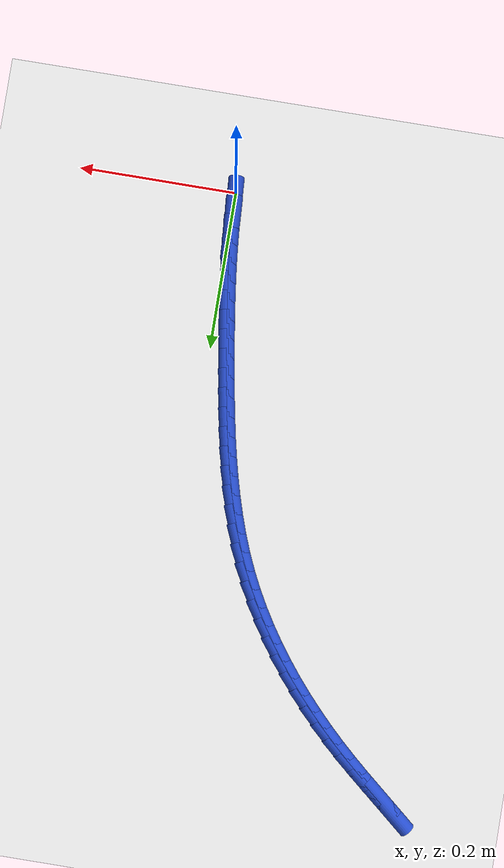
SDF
<sdf version="1.6">
 <world name="default">
  <model name="ground_plane">
   <static>1</static>
   <link name="link">
    <collision name="collision">
     <geometry><plane><normal>0 0 1</normal><size>100 100</size></plane></geometry>
     <surface><friction><ode><mu>100</mu><mu2>50</mu2></ode></friction></surface>
    </collision>
    <visual name="visual">
     <cast_shadows>0</cast_shadows>
     <geometry><plane><normal>0 0 1</normal><size>100 100</size></plane></geometry>
     <material>
      <script><uri>file://media/materials/scripts/gazebo.material</uri><name>Gazebo/WhiteGlow</name></script>
     </material>
    </visual>
   </link>
  </model>
  <model name="line">
   <link name="link_1">
    <pose>-0.0008810601804037996 0.024103721296122232 0.01 0 1.57 -1.5107745813059357</pose>
    <collision name="collision">
     <geometry><cylinder><radius>0.01</radius><length>0.08</length></cylinder></geometry>
    </collision>
    <visual name="visual">
     <material>
      <script><name>Gazebo/Blue</name><uri>file://media/materials/scripts/gazebo.material</uri></script>
     </material>
     <geometry><cylinder><radius>0.01</radius><length>0.08</length></cylinder></geometry>
    </visual>
   </link>
   <link name="link_2">
    <pose>-0.002324603125221716 0.048125165677702086 0.01 0 1.57 -1.4895934008779321</pose>
    <collision name="collision">
     <geometry><cylinder><radius>0.01</radius><length>0.08</length></cylinder></geometry>
    </collision>
    <visual name="visual">
     <material>
      <script><name>Gazebo/Blue</name><uri>file://media/materials/scripts/gazebo.material</uri></script>
     </material>
     <geometry><cylinder><radius>0.01</radius><length>0.08</length></cylinder></geometry>
    </visual>
   </link>
   <link name="link_3">
    <pose>-0.004274082861389004 0.07207988070871141 0.01 0 1.57 -1.470774897872237</pose>
    <collision name="collision">
     <geometry><cylinder><radius>0.01</radius><length>0.08</length></cylinder></geometry>
    </collision>
    <visual name="visual">
     <material>
      <script><name>Gazebo/Blue</name><uri>file://media/materials/scripts/gazebo.material</uri></script>
     </material>
     <geometry><cylinder><radius>0.01</radius><length>0.08</length></cylinder></geometry>
    </visual>
   </link>
   <link name="link_4">
    <pose>-0.006672953415840927 0.09598341395312208 0.01 0 1.57 -1.454360110415724</pose>
    <collision name="collision">
     <geometry><cylinder><radius>0.01</radius><length>0.08</length></cylinder></geometry>
    </collision>
    <visual name="visual">
     <material>
      <script><name>Gazebo/Blue</name><uri>file://media/materials/scripts/gazebo.material</uri></script>
     </material>
     <geometry><cylinder><radius>0.01</radius><length>0.08</length></cylinder></geometry>
    </visual>
   </link>
   <link name="link_5">
    <pose>-0.009464668815512745 0.11985131297490592 0.01 0 1.57 -1.4403751970826717</pose>
    <collision name="collision">
     <geometry><cylinder><radius>0.01</radius><length>0.08</length></cylinder></geometry>
    </collision>
    <visual name="visual">
     <material>
      <script><name>Gazebo/Blue</name><uri>file://media/materials/scripts/gazebo.material</uri></script>
     </material>
     <geometry><cylinder><radius>0.01</radius><length>0.08</length></cylinder></geometry>
    </visual>
   </link>
   <link name="link_6">
    <pose>-0.012592683087339724 0.14369912533803478 0.01 0 1.57 -1.4288341152202058</pose>
    <collision name="collision">
     <geometry><cylinder><radius>0.01</radius><length>0.08</length></cylinder></geometry>
    </collision>
    <visual name="visual">
     <material>
      <script><name>Gazebo/Blue</name><uri>file://media/materials/scripts/gazebo.material</uri></script>
     </material>
     <geometry><cylinder><radius>0.01</radius><length>0.08</length></cylinder></geometry>
    </visual>
   </link>
   <link name="link_7">
    <pose>-0.01600045025825712 0.1675423986064804 0.01 0 1.57 -1.4197410482318162</pose>
    <collision name="collision">
     <geometry><cylinder><radius>0.01</radius><length>0.08</length></cylinder></geometry>
    </collision>
    <visual name="visual">
     <material>
      <script><name>Gazebo/Blue</name><uri>file://media/materials/scripts/gazebo.material</uri></script>
     </material>
     <geometry><cylinder><radius>0.01</radius><length>0.08</length></cylinder></geometry>
    </visual>
   </link>
   <link name="link_8">
    <pose>-0.0196314243552002 0.19139668034421467 0.01 0 1.57 -1.4130924896593584</pose>
    <collision name="collision">
     <geometry><cylinder><radius>0.01</radius><length>0.08</length></cylinder></geometry>
    </collision>
    <visual name="visual">
     <material>
      <script><name>Gazebo/Blue</name><uri>file://media/materials/scripts/gazebo.material</uri></script>
     </material>
     <geometry><cylinder><radius>0.01</radius><length>0.08</length></cylinder></geometry>
    </visual>
   </link>
   <link name="link_9">
    <pose>-0.023429059454538527 0.21527751809463105 0.01 0 1.57 -1.4078258077938086</pose>
    <collision name="collision">
     <geometry><cylinder><radius>0.01</radius><length>0.08</length></cylinder></geometry>
    </collision>
    <visual name="visual">
     <material>
      <script><name>Gazebo/Blue</name><uri>file://media/materials/scripts/gazebo.material</uri></script>
     </material>
     <geometry><cylinder><radius>0.01</radius><length>0.08</length></cylinder></geometry>
    </visual>
   </link>
   <link name="link_10">
    <pose>-0.02736102292786811 0.23919037988835265 0.01 0 1.57 -1.3998796605443922</pose>
    <collision name="collision">
     <geometry><cylinder><radius>0.01</radius><length>0.08</length></cylinder></geometry>
    </collision>
    <visual name="visual">
     <material>
      <script><name>Gazebo/Blue</name><uri>file://media/materials/scripts/gazebo.material</uri></script>
     </material>
     <geometry><cylinder><radius>0.01</radius><length>0.08</length></cylinder></geometry>
    </visual>
   </link>
   <link name="link_11">
    <pose>-0.03148817368707044 0.26310193997301834 0.01 0 1.57 -1.3882653437921404</pose>
    <collision name="collision">
     <geometry><cylinder><radius>0.01</radius><length>0.08</length></cylinder></geometry>
    </collision>
    <visual name="visual">
     <material>
      <script><name>Gazebo/Blue</name><uri>file://media/materials/scripts/gazebo.material</uri></script>
     </material>
     <geometry><cylinder><radius>0.01</radius><length>0.08</length></cylinder></geometry>
    </visual>
   </link>
   <link name="link_12">
    <pose>-0.03589378747307117 0.2869695409166048 0.01 0 1.57 -1.3729497491673839</pose>
    <collision name="collision">
     <geometry><cylinder><radius>0.01</radius><length>0.08</length></cylinder></geometry>
    </collision>
    <visual name="visual">
     <material>
      <script><name>Gazebo/Blue</name><uri>file://media/materials/scripts/gazebo.material</uri></script>
     </material>
     <geometry><cylinder><radius>0.01</radius><length>0.08</length></cylinder></geometry>
    </visual>
   </link>
   <link name="link_13">
    <pose>-0.04066114002679593 0.3107505252870892 0.01 0 1.57 -1.3538834673669393</pose>
    <collision name="collision">
     <geometry><cylinder><radius>0.01</radius><length>0.08</length></cylinder></geometry>
    </collision>
    <visual name="visual">
     <material>
      <script><name>Gazebo/Blue</name><uri>file://media/materials/scripts/gazebo.material</uri></script>
     </material>
     <geometry><cylinder><radius>0.01</radius><length>0.08</length></cylinder></geometry>
    </visual>
   </link>
   <link name="link_14">
    <pose>-0.04587350708917035 0.3344022356524479 0.01 0 1.57 -1.3310067687901515</pose>
    <collision name="collision">
     <geometry><cylinder><radius>0.01</radius><length>0.08</length></cylinder></geometry>
    </collision>
    <visual name="visual">
     <material>
      <script><name>Gazebo/Blue</name><uri>file://media/materials/scripts/gazebo.material</uri></script>
     </material>
     <geometry><cylinder><radius>0.01</radius><length>0.08</length></cylinder></geometry>
    </visual>
   </link>
   <link name="link_15">
    <pose>-0.05161416440112008 0.35788201458065805 0.01 0 1.57 -1.3042573915515727</pose>
    <collision name="collision">
     <geometry><cylinder><radius>0.01</radius><length>0.08</length></cylinder></geometry>
    </collision>
    <visual name="visual">
     <material>
      <script><name>Gazebo/Blue</name><uri>file://media/materials/scripts/gazebo.material</uri></script>
     </material>
     <geometry><cylinder><radius>0.01</radius><length>0.08</length></cylinder></geometry>
    </visual>
   </link>
   <link name="link_16">
    <pose>-0.05796638770357074 0.3811472046396963 0.01 0 1.57 -1.2735804389887955</pose>
    <collision name="collision">
     <geometry><cylinder><radius>0.01</radius><length>0.08</length></cylinder></geometry>
    </collision>
    <visual name="visual">
     <material>
      <script><name>Gazebo/Blue</name><uri>file://media/materials/scripts/gazebo.material</uri></script>
     </material>
     <geometry><cylinder><radius>0.01</radius><length>0.08</length></cylinder></geometry>
    </visual>
   </link>
   <link name="link_17">
    <pose>-0.06501345273744799 0.4041551483975397 0.01 0 1.57 -1.238940592452902</pose>
    <collision name="collision">
     <geometry><cylinder><radius>0.01</radius><length>0.08</length></cylinder></geometry>
    </collision>
    <visual name="visual">
     <material>
      <script><name>Gazebo/Blue</name><uri>file://media/materials/scripts/gazebo.material</uri></script>
     </material>
     <geometry><cylinder><radius>0.01</radius><length>0.08</length></cylinder></geometry>
    </visual>
   </link>
   <link name="link_18">
    <pose>-0.07283863524367745 0.42686318842216486 0.01 0 1.57 -1.2003366212303013</pose>
    <collision name="collision">
     <geometry><cylinder><radius>0.01</radius><length>0.08</length></cylinder></geometry>
    </collision>
    <visual name="visual">
     <material>
      <script><name>Gazebo/Blue</name><uri>file://media/materials/scripts/gazebo.material</uri></script>
     </material>
     <geometry><cylinder><radius>0.01</radius><length>0.08</length></cylinder></geometry>
    </visual>
   </link>
   <link name="link_19">
    <pose>-0.08152521096318474 0.4492286672815486 0.01 0 1.57 -1.1578177838266042</pose>
    <collision name="collision">
     <geometry><cylinder><radius>0.01</radius><length>0.08</length></cylinder></geometry>
    </collision>
    <visual name="visual">
     <material>
      <script><name>Gazebo/Blue</name><uri>file://media/materials/scripts/gazebo.material</uri></script>
     </material>
     <geometry><cylinder><radius>0.01</radius><length>0.08</length></cylinder></geometry>
    </visual>
   </link>
   <link name="link_20">
    <pose>-0.0911564556368956 0.47120892754366817 0.01 0 1.57 -1.1120649812176504</pose>
    <collision name="collision">
     <geometry><cylinder><radius>0.01</radius><length>0.08</length></cylinder></geometry>
    </collision>
    <visual name="visual">
     <material>
      <script><name>Gazebo/Blue</name><uri>file://media/materials/scripts/gazebo.material</uri></script>
     </material>
     <geometry><cylinder><radius>0.01</radius><length>0.08</length></cylinder></geometry>
    </visual>
   </link>
   <link name="link_21">
    <pose>-0.10180172579984494 0.4927637432552224 0.01 0 1.57 -1.066969201448135</pose>
    <collision name="collision">
     <geometry><cylinder><radius>0.01</radius><length>0.08</length></cylinder></geometry>
    </collision>
    <visual name="visual">
     <material>
      <script><name>Gazebo/Blue</name><uri>file://media/materials/scripts/gazebo.material</uri></script>
     </material>
     <geometry><cylinder><radius>0.01</radius><length>0.08</length></cylinder></geometry>
    </visual>
   </link>
   <link name="link_22">
    <pose>-0.11343680794213319 0.5138692337612801 0.01 0 1.57 -1.0240342662497106</pose>
    <collision name="collision">
     <geometry><cylinder><radius>0.01</radius><length>0.08</length></cylinder></geometry>
    </collision>
    <visual name="visual">
     <material>
      <script><name>Gazebo/Blue</name><uri>file://media/materials/scripts/gazebo.material</uri></script>
     </material>
     <geometry><cylinder><radius>0.01</radius><length>0.08</length></cylinder></geometry>
    </visual>
   </link>
   <link name="link_23">
    <pose>-0.1259989321141269 0.5345082536447942 0.01 0 1.57 -0.9831604393416739</pose>
    <collision name="collision">
     <geometry><cylinder><radius>0.01</radius><length>0.08</length></cylinder></geometry>
    </collision>
    <visual name="visual">
     <material>
      <script><name>Gazebo/Blue</name><uri>file://media/materials/scripts/gazebo.material</uri></script>
     </material>
     <geometry><cylinder><radius>0.01</radius><length>0.08</length></cylinder></geometry>
    </visual>
   </link>
   <link name="link_24">
    <pose>-0.13942520825737797 0.5546636784699449 0.01 0 1.57 -0.9442263243144104</pose>
    <collision name="collision">
     <geometry><cylinder><radius>0.01</radius><length>0.08</length></cylinder></geometry>
    </collision>
    <visual name="visual">
     <material>
      <script><name>Gazebo/Blue</name><uri>file://media/materials/scripts/gazebo.material</uri></script>
     </material>
     <geometry><cylinder><radius>0.01</radius><length>0.08</length></cylinder></geometry>
    </visual>
   </link>
   <link name="link_25">
    <pose>-0.15365274631343825 0.5743183838009129 0.01 0 1.57 -0.9070990932670701</pose>
    <collision name="collision">
     <geometry><cylinder><radius>0.01</radius><length>0.08</length></cylinder></geometry>
    </collision>
    <visual name="visual">
     <material>
      <script><name>Gazebo/Blue</name><uri>file://media/materials/scripts/gazebo.material</uri></script>
     </material>
     <geometry><cylinder><radius>0.01</radius><length>0.08</length></cylinder></geometry>
    </visual>
   </link>
   <link name="link_26">
    <pose>-0.16861865622385946 0.5934552452018785 0.01 0 1.57 -0.8716386688690076</pose>
    <collision name="collision">
     <geometry><cylinder><radius>0.01</radius><length>0.08</length></cylinder></geometry>
    </collision>
    <visual name="visual">
     <material>
      <script><name>Gazebo/Blue</name><uri>file://media/materials/scripts/gazebo.material</uri></script>
     </material>
     <geometry><cylinder><radius>0.01</radius><length>0.08</length></cylinder></geometry>
    </visual>
   </link>
   <link name="link_27">
    <pose>-0.18426004793019363 0.6120571382370221 0.01 0 1.57 -0.8377008184548389</pose>
    <collision name="collision">
     <geometry><cylinder><radius>0.01</radius><length>0.08</length></cylinder></geometry>
    </collision>
    <visual name="visual">
     <material>
      <script><name>Gazebo/Blue</name><uri>file://media/materials/scripts/gazebo.material</uri></script>
     </material>
     <geometry><cylinder><radius>0.01</radius><length>0.08</length></cylinder></geometry>
    </visual>
   </link>
   <link name="link_28">
    <pose>-0.2005140313739927 0.6301069384705245 0.01 0 1.57 -0.8051392859692186</pose>
    <collision name="collision">
     <geometry><cylinder><radius>0.01</radius><length>0.08</length></cylinder></geometry>
    </collision>
    <visual name="visual">
     <material>
      <script><name>Gazebo/Blue</name><uri>file://media/materials/scripts/gazebo.material</uri></script>
     </material>
     <geometry><cylinder><radius>0.01</radius><length>0.08</length></cylinder></geometry>
    </visual>
   </link>
   <link name="link_29">
    <pose>-0.21731771649680842 0.647587521466566 0.01 0 1.57 -0.7738070939068152</pose>
    <collision name="collision">
     <geometry><cylinder><radius>0.01</radius><length>0.08</length></cylinder></geometry>
    </collision>
    <visual name="visual">
     <material>
      <script><name>Gazebo/Blue</name><uri>file://media/materials/scripts/gazebo.material</uri></script>
     </material>
     <geometry><cylinder><radius>0.01</radius><length>0.08</length></cylinder></geometry>
    </visual>
   </link>
   <link name="link_30">
    <pose>-0.23460821324019268 0.6644817627893269 0.01 0 1.57 -0.7436995711177722</pose>
    <collision name="collision">
     <geometry><cylinder><radius>0.01</radius><length>0.08</length></cylinder></geometry>
    </collision>
    <visual name="visual">
     <material>
      <script><name>Gazebo/Blue</name><uri>file://media/materials/scripts/gazebo.material</uri></script>
     </material>
     <geometry><cylinder><radius>0.01</radius><length>0.08</length></cylinder></geometry>
    </visual>
   </link>
   <link name="link_31">
    <pose>-0.252321800210542 0.6807764309087913 0.01 0 1.57 -0.7185550530422332</pose>
    <collision name="collision">
     <geometry><cylinder><radius>0.01</radius><length>0.08</length></cylinder></geometry>
    </collision>
    <visual name="visual">
     <material>
      <script><name>Gazebo/Blue</name><uri>file://media/materials/scripts/gazebo.material</uri></script>
     </material>
     <geometry><cylinder><radius>0.01</radius><length>0.08</length></cylinder></geometry>
    </visual>
   </link>
   <link name="link_32">
    <pose>-0.27037258642767936 0.6965621081559228 0.01 0 1.57 -0.702691066058689</pose>
    <collision name="collision">
     <geometry><cylinder><radius>0.01</radius><length>0.08</length></cylinder></geometry>
    </collision>
    <visual name="visual">
     <material>
      <script><name>Gazebo/Blue</name><uri>file://media/materials/scripts/gazebo.material</uri></script>
     </material>
     <geometry><cylinder><radius>0.01</radius><length>0.08</length></cylinder></geometry>
    </visual>
   </link>
   <link name="link_33">
    <pose>-0.2886506723006257 0.712041802349447 0.01 0 1.57 -0.6964608282099027</pose>
    <collision name="collision">
     <geometry><cylinder><radius>0.01</radius><length>0.08</length></cylinder></geometry>
    </collision>
    <visual name="visual">
     <material>
      <script><name>Gazebo/Blue</name><uri>file://media/materials/scripts/gazebo.material</uri></script>
     </material>
     <geometry><cylinder><radius>0.01</radius><length>0.08</length></cylinder></geometry>
    </visual>
   </link>
   <link name="link_34">
    <pose>-0.30704495836601525 0.7274241399688044 0.01 0 1.57 -0.6998733784807241</pose>
    <collision name="collision">
     <geometry><cylinder><radius>0.01</radius><length>0.08</length></cylinder></geometry>
    </collision>
    <visual name="visual">
     <material>
      <script><name>Gazebo/Blue</name><uri>file://media/materials/scripts/gazebo.material</uri></script>
     </material>
     <geometry><cylinder><radius>0.01</radius><length>0.08</length></cylinder></geometry>
    </visual>
   </link>
   <link name="link_291">
    <pose>-0.0008855228489735882 0.024092836369609225 0.01 0 1.57 -1.5092842898353467</pose>
    <collision name="collision">
     <geometry><cylinder><radius>0.01</radius><length>0.08</length></cylinder></geometry>
    </collision>
    <visual name="visual">
     <material>
      <script><name>Gazebo/Blue</name><uri>file://media/materials/scripts/gazebo.material</uri></script>
     </material>
     <geometry><cylinder><radius>0.01</radius><length>0.08</length></cylinder></geometry>
    </visual>
   </link>
   <link name="link_292">
    <pose>-0.0023603044737802673 0.04803808626560305 0.01 0 1.57 -1.521701784829082</pose>
    <collision name="collision">
     <geometry><cylinder><radius>0.01</radius><length>0.08</length></cylinder></geometry>
    </collision>
    <visual name="visual">
     <material>
      <script><name>Gazebo/Blue</name><uri>file://media/materials/scripts/gazebo.material</uri></script>
     </material>
     <geometry><cylinder><radius>0.01</radius><length>0.08</length></cylinder></geometry>
    </visual>
   </link>
  </model>
 </world>
</sdf>
